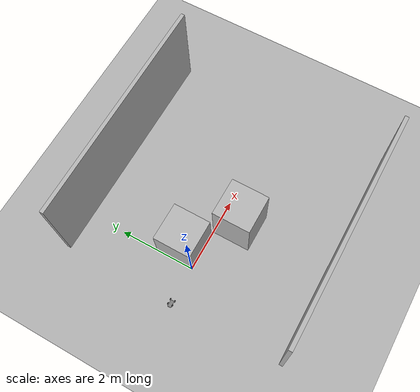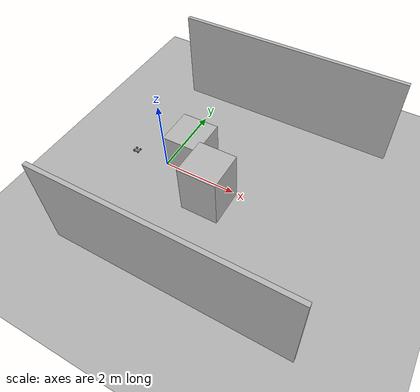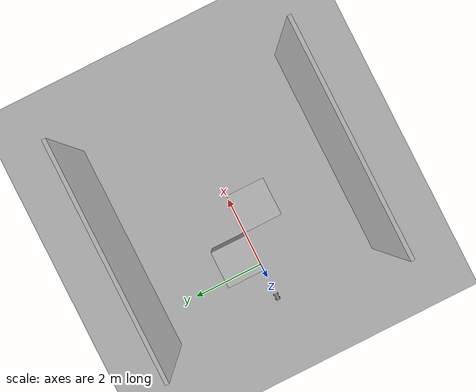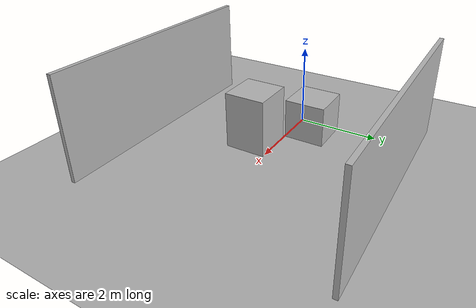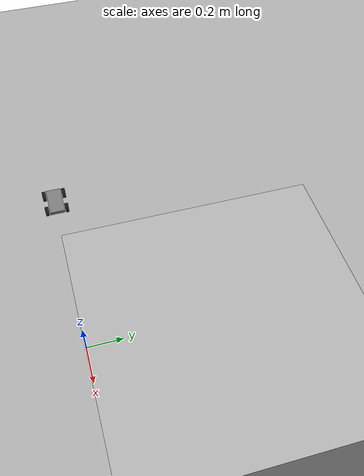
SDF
<?xml version="1.0" ?>
<sdf version="1.8">
  <world name="factory">
    <!-- Physics system plugin -->
    <plugin filename="gz-sim-physics-system" name="gz::sim::systems::Physics">
      <engine><filename>gz-physics-dartsim-plugin</filename></engine>
    </plugin>

    <!-- Sensors system plugin (CRITICAL for camera and laser sensors) -->
    <plugin filename="gz-sim-sensors-system" name="gz::sim::systems::Sensors">
      <render_engine>ogre2</render_engine>
    </plugin>

    <!-- Scene broadcaster -->
    <plugin filename="gz-sim-scene-broadcaster-system" name="gz::sim::systems::SceneBroadcaster"></plugin>

    <!-- User commands (for interaction) -->
    <plugin filename="gz-sim-user-commands-system" name="gz::sim::systems::UserCommands"></plugin>

    <!-- Imu system (needed for diff drive) -->
    <plugin filename="gz-sim-imu-system" name="gz::sim::systems::Imu"></plugin>

    <!-- Apply link wrench system (needed for actuators) -->
    <plugin filename="gz-sim-apply-joint-force-system" name="gz::sim::systems::ApplyJointForce"></plugin>

    <!-- Sun (inline, no Fuel dependency) -->
    <light name="sun" type="directional">
      <cast_shadows>true</cast_shadows>
      <pose>0 0 10 0 0 0</pose>
      <diffuse>1 1 1 1</diffuse>
      <specular>0.1 0.1 0.1 1</specular>
      <attenuation>
        <range>1000</range>
        <constant>0.9</constant>
        <linear>0.01</linear>
        <quadratic>0.001</quadratic>
      </attenuation>
      <direction>-0.5 0.5 -1</direction>
    </light>

    <!-- Ground plane (inline) -->
    <model name="ground">
      <static>true</static>
      <link name="base_link">
        <collision name="base_col">
          <geometry>
            <plane><normal>0 0 1</normal><size>100 100</size></plane>
          </geometry>
        </collision>
        <visual name="base_vis">
          <geometry>
            <plane><normal>0 0 1</normal><size>100 100</size></plane>
          </geometry>
          <material>
            <ambient>0.7 0.7 0.7 1</ambient>
            <diffuse>0.7 0.7 0.7 1</diffuse>
          </material>
        </visual>
      </link>
    </model>

    <!-- Two static walls (corrected tags) -->
    <model name="wall1">
      <static>true</static>
      <pose>2 -3 1.25 0 0 0</pose>
      <link name="l">
        <collision name="c">
          <geometry><box><size>6 0.1 2.5</size></box></geometry>
        </collision>
        <visual name="v">
          <geometry><box><size>6 0.1 2.5</size></box></geometry>
        </visual>
      </link>
    </model>

    <model name="wall2">
      <static>true</static>
      <pose>2 3 1.25 0 0 0</pose>
      <link name="l">
        <collision name="c">
          <geometry><box><size>6 0.1 2.5</size></box></geometry>
        </collision>
        <visual name="v">
          <geometry><box><size>6 0.1 2.5</size></box></geometry>
        </visual>
      </link>
    </model>

    <!-- Two box obstacles -->
    <model name="box_1">
      <static>true</static>
      <pose>0.5  0.5 0.5 0 0 0</pose>
      <link name="link">
        <collision name="col"><geometry><box><size>1 1 1</size></box></geometry></collision>
        <visual    name="vis"><geometry><box><size>1 1 1</size></box></geometry></visual>
      </link>
    </model>

    <model name="box_2">
      <static>true</static>
      <pose>1.6 -0.5 0.7 0 0 0</pose>
      <link name="link">
        <collision name="col"><geometry><box><size>1 1 1.4</size></box></geometry></collision>
        <visual    name="vis"><geometry><box><size>1 1 1.4</size></box></geometry></visual>
      </link>
    </model>

    <!-- PiCar-X: resolved via GZ_SIM_RESOURCE_PATH -->
    <include>
      <uri>model://picarx</uri>
      <pose>-1.0 0.0 0.02 0 0 0</pose>
    </include>
  </world>
</sdf>

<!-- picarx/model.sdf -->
<sdf version="1.8">
  <model name="picarx">
    <!-- Base origin ~ at wheel center height to avoid bouncing -->
    <pose>0 0 0.03 0 0 0</pose>
    <static>false</static>

    <!-- BASE -->
    <link name="base_link">
      <pose>0 0 0 0 0 0</pose>
      <inertial>
        <mass>1.0</mass>
        <inertia>
          <!-- approx box 0.18 x 0.09 x 0.02 -->
          <ixx>0.00071</ixx>
          <iyy>0.00273</iyy>
          <izz>0.00338</izz>
        </inertia>
      </inertial>
      <collision name="base_col">
        <geometry><box><size>0.18 0.09 0.02</size></box></geometry>
        <surface><friction><ode><mu>1.0</mu><mu2>1.0</mu2></ode></friction></surface>
      </collision>
      <visual name="base_vis">
        <geometry><box><size>0.18 0.09 0.02</size></box></geometry>
        <material><ambient>0.5 0.5 0.5 1</ambient></material>
      </visual>
    </link>

    <!-- REAR LEFT WHEEL (driven) -->
    <link name="left_wheel">
      <pose>-0.03 0.06 0.03 1.5708 0 0</pose> <!-- roll 90deg so cylinder axis is Y -->
      <inertial><mass>0.05</mass><inertia>
        <ixx>0.00005</ixx><iyy>0.00002</iyy><izz>0.00005</izz>
      </inertia></inertial>
      <collision name="col">
        <geometry><cylinder><radius>0.03</radius><length>0.02</length></cylinder></geometry>
        <surface><friction><ode><mu>1.5</mu><mu2>1.5</mu2></ode></friction></surface>
      </collision>
      <visual name="vis">
        <geometry><cylinder><radius>0.03</radius><length>0.02</length></cylinder></geometry>
        <material><ambient>0.1 0.1 0.1 1</ambient></material>
      </visual>
    </link>

    <!-- REAR RIGHT WHEEL (driven) -->
    <link name="right_wheel">
      <pose>-0.03 -0.06 0.03 1.5708 0 0</pose>
      <inertial><mass>0.05</mass><inertia>
        <ixx>0.00005</ixx><iyy>0.00002</iyy><izz>0.00005</izz>
      </inertia></inertial>
      <collision name="col">
        <geometry><cylinder><radius>0.03</radius><length>0.02</length></cylinder></geometry>
        <surface><friction><ode><mu>1.5</mu><mu2>1.5</mu2></ode></friction></surface>
      </collision>
      <visual name="vis">
        <geometry><cylinder><radius>0.03</radius><length>0.02</length></cylinder></geometry>
        <material><ambient>0.1 0.1 0.1 1</ambient></material>
      </visual>
    </link>

    <!-- FRONT WHEELS (visual only so they don't fight physics) -->
    <link name="front_left_wheel">
      <pose>0.09 0.06 0.03 1.5708 0 0</pose>
      <visual name="vis">
        <geometry><cylinder><radius>0.028</radius><length>0.02</length></cylinder></geometry>
        <material><ambient>0.1 0.1 0.1 1</ambient></material>
      </visual>
    </link>
    <joint name="front_left_fixed" type="fixed">
      <parent>base_link</parent><child>front_left_wheel</child>
    </joint>

    <link name="front_right_wheel">
      <pose>0.09 -0.06 0.03 1.5708 0 0</pose>
      <visual name="vis">
        <geometry><cylinder><radius>0.028</radius><length>0.02</length></cylinder></geometry>
        <material><ambient>0.1 0.1 0.1 1</ambient></material>
      </visual>
    </link>
    <joint name="front_right_fixed" type="fixed">
      <parent>base_link</parent><child>front_right_wheel</child>
    </joint>

    <!-- DRIVEN JOINTS -->
    <joint name="left_wheel_joint" type="revolute">
      <parent>base_link</parent><child>left_wheel</child>
      <axis>
        <xyz>0 1 0</xyz>
        <dynamics><damping>0.2</damping></dynamics>
        <limit><lower>-1e16</lower><upper>1e16</upper></limit>
      </axis>
    </joint>

    <joint name="right_wheel_joint" type="revolute">
      <parent>base_link</parent><child>right_wheel</child>
      <axis>
        <xyz>0 1 0</xyz>
        <dynamics><damping>0.2</damping></dynamics>
        <limit><lower>-1e16</lower><upper>1e16</upper></limit>
      </axis>
    </joint>

    <!-- SIMPLE FORWARD FACING RAY ("ultrasonic") -->
    <link name="sonar_link">
      <pose>0.10 0 0.05 0 0 0</pose>
      <sensor name="front_scan" type="lidar">
        <always_on>true</always_on>
        <update_rate>15</update_rate>
        <visualize>true</visualize>
        <lidar>
          <scan><horizontal><samples>61</samples><resolution>1</resolution><min_angle>-0.45</min_angle><max_angle>0.45</max_angle></horizontal></scan>
          <range><min>0.03</min><max>2.5</max><resolution>0.01</resolution></range>
        </lidar>
        <topic>/picarx/scan</topic>
      </sensor>
    </link>
    <joint name="sonar_fixed" type="fixed"><parent>base_link</parent><child>sonar_link</child></joint>

    <!-- FRONT CAMERA -->
    <link name="camera_link">
      <pose>0.08 0 0.08 0 0 0</pose>
      <sensor name="front_camera" type="camera">
        <always_on>true</always_on>
        <update_rate>15</update_rate>
        <visualize>false</visualize>
        <camera>
          <horizontal_fov>1.047</horizontal_fov>
          <image><width>160</width><height>120</height><format>R8G8B8</format></image>
          <clip><near>0.02</near><far>10</far></clip>
        </camera>
        <topic>/picarx/image_raw</topic>
      </sensor>
    </link>
    <joint name="camera_fixed" type="fixed"><parent>base_link</parent><child>camera_link</child></joint>

    <!-- DIFF-DRIVE: subscribes to /picarx/cmd_vel, publishes /picarx/odometry -->
    <plugin name="gz::sim::systems::DiffDrive" filename="gz-sim-diff-drive-system">
      <left_joint>left_wheel_joint</left_joint>
      <right_joint>right_wheel_joint</right_joint>
      <wheel_separation>0.12</wheel_separation>
      <wheel_radius>0.03</wheel_radius>
      <topic>/picarx/cmd_vel</topic>
      <odom_topic>/picarx/odometry</odom_topic>
      <odom_frame>odom</odom_frame>
      <robot_base_frame>base_link</robot_base_frame>
      <max_linear_speed>1.0</max_linear_speed>  <!-- PHASE 1: Increased from 0.5 for consistency with MOCK mode -->
      <max_angular_speed>2.0</max_angular_speed>
    </plugin>
  </model>
</sdf>
